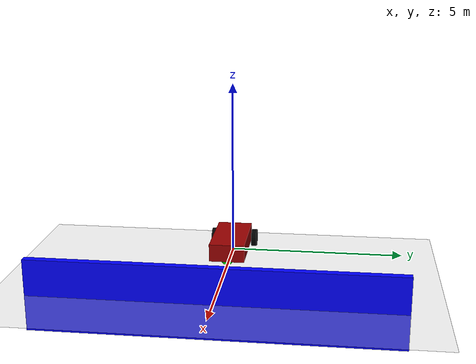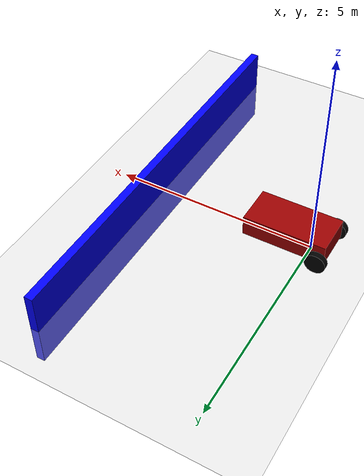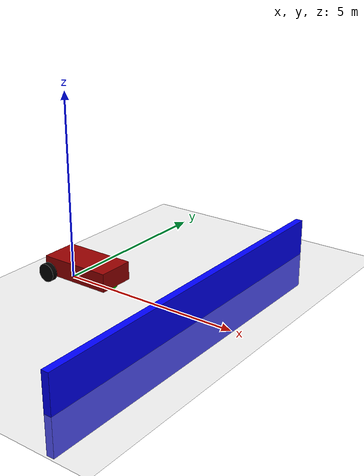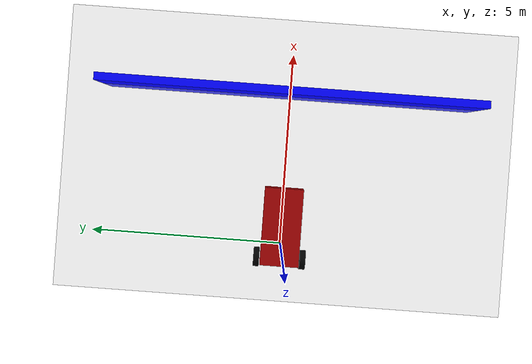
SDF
<?xml version="1.0" ?>
<sdf version="1.7">
    <world name="sensor-world">
        <physics name="1ms" type="ignored">
            <max_step_size>0.001</max_step_size>
            <real_time_factor>1.0</real_time_factor>
        </physics>
        <plugin
            filename="libignition-gazebo-physics-system.so"
            name="ignition::gazebo::systems::Physics">
        </plugin>
        <plugin
            filename="libignition-gazebo-user-commands-system.so"
            name="ignition::gazebo::systems::UserCommands">
        </plugin>
        <plugin
            filename="libignition-gazebo-scene-broadcaster-system.so"
            name="ignition::gazebo::systems::SceneBroadcaster">
        </plugin>

        <!-- Plugin for IMU sensor-->
        <plugin filename="libignition-gazebo-imu-system.so"
                name="ignition::gazebo::systems::Imu">
        </plugin>

        <!-- Plugin for Contact sensor-->
        <plugin filename="libignition-gazebo-contact-system.so"
                name="ignition::gazebo::systems::Contact">
        </plugin>

        <!-- Plugin for Lidar sensor-->
        <plugin
          filename="libignition-gazebo-sensors-system.so"
          name="ignition::gazebo::systems::Sensors">
          <render_engine>ogre2</render_engine>
        </plugin>

        <gui fullscreen="0">

            <!-- 3D scene -->
            <plugin filename="GzScene3D" name="3D View">
                <ignition-gui>
                <title>3D View</title>
                <property type="bool" key="showTitleBar">false</property>
                <property type="string" key="state">docked</property>
                </ignition-gui>

                <engine>ogre2</engine>
                <scene>scene</scene>
                <ambient_light>0.4 0.4 0.4</ambient_light>
                <background_color>0.8 0.8 0.8</background_color>
            </plugin>

            <!-- World control -->
            <plugin filename="WorldControl" name="World control">
                <ignition-gui>
                <title>World control</title>
                <property type="bool" key="showTitleBar">false</property>
                <property type="bool" key="resizable">false</property>
                <property type="double" key="height">72</property>
                <property type="double" key="width">121</property>
                <property type="double" key="z">1</property>

                <property type="string" key="state">floating</property>
                <anchors target="3D View">
                    <line own="left" target="left"/>
                    <line own="bottom" target="bottom"/>
                </anchors>
                </ignition-gui>

                <play_pause>true</play_pause>
                <step>true</step>
                <start_paused>true</start_paused>
                <service>/world/car_world/control</service>
                <stats_topic>/world/car_world/stats</stats_topic>
            </plugin>

            <!-- World statistics -->
            <plugin filename="WorldStats" name="World stats">
                <ignition-gui>
                <title>World stats</title>
                <property type="bool" key="showTitleBar">false</property>
                <property type="bool" key="resizable">false</property>
                <property type="double" key="height">110</property>
                <property type="double" key="width">290</property>
                <property type="double" key="z">1</property>

                <property type="string" key="state">floating</property>
                <anchors target="3D View">
                    <line own="right" target="right"/>
                    <line own="bottom" target="bottom"/>
                </anchors>
                </ignition-gui>

                <sim_time>true</sim_time>
                <real_time>true</real_time>
                <real_time_factor>true</real_time_factor>
                <iterations>true</iterations>
                <topic>/world/car_world/stats</topic>

            </plugin>

            <!-- Entity tree -->
            <plugin filename="EntityTree" name="Entity tree">
            </plugin>

            <!-- KeyPublisher plugin-->
            <plugin filename="KeyPublisher" name="Key Publisher"/>

        </gui>

        <light type="directional" name="sun">
            <cast_shadows>true</cast_shadows>
            <pose>0 0 10 0 0 0</pose>
            <diffuse>0.8 0.8 0.8 1</diffuse>
            <specular>0.2 0.2 0.2 1</specular>
            <attenuation>
                <range>1000</range>
                <constant>0.9</constant>
                <linear>0.01</linear>
                <quadratic>0.001</quadratic>
            </attenuation>
            <direction>-0.5 0.1 -0.9</direction>
        </light>

        <model name="ground_plane">
            <static>true</static>
            <link name="link">
                <collision name="collision">
                <geometry>
                    <plane>
                    <normal>0 0 1</normal>
                    </plane>
                </geometry>
                </collision>
                <visual name="visual">
                <geometry>
                    <plane>
                    <normal>0 0 1</normal>
                    <size>100 100</size>
                    </plane>
                </geometry>
                <material>
                    <ambient>0.8 0.8 0.8 1</ambient>
                    <diffuse>0.8 0.8 0.8 1</diffuse>
                    <specular>0.8 0.8 0.8 1</specular>
                </material>
                </visual>
            </link>
        </model>

        <!--wall-->
        <model name='wall'>
            <static>true</static>
            <pose>4 0 0 0 0 0</pose><!--pose relative to the world-->
            <link name='box'>
                <pose/>
                <visual name='visual'>
                    <geometry>
                        <box>
                            <size>0.2 10.0 2.0</size>
                        </box>
                    </geometry>
                    <!--let's add color to our link-->
                    <material>
                        <ambient>0.0 0.0 1.0 1</ambient>
                        <diffuse>0.0 0.0 1.0 1</diffuse>
                        <specular>0.0 0.0 1.0 1</specular>
                    </material>
                </visual>
                <collision name='collision'>
                    <geometry>
                        <box>
                            <size>0.5 10.0 2.0</size>
                        </box>
                    </geometry>
                </collision>
                <sensor name='sensor_contact' type='contact'>
                    <contact>
                        <collision>collision</collision>
                    </contact>
                </sensor>
                <!-- Plugin for contact sensor to detect wall-->
                <plugin filename="libignition-gazebo-touchplugin-system.so"
                        name="ignition::gazebo::systems::TouchPlugin">
                    <target>vehicle_blue</target>
                    <namespace>wall</namespace>
                    <time>0.001</time>
                    <enabled>true</enabled>
                </plugin>
            </link>
        </model>

        <!--Robot model-->
        <model name='vehicle_blue' canonical_link='chassis'>
            <pose relative_to='world'>0 0 0 0 0 0</pose>

            <frame name="lidar_frame" attached_to='chassis'>
                <pose>0.8 0 0.5 0 0 0</pose>
            </frame>

            <!--Chassis of the robot-->
            <link name='chassis'>
                <pose relative_to='__model__'>0.5 0 0.4 0 0 0</pose>

                <inertial> <!--inertial properties of the link mass, inertia matix-->
                    <mass>1.14395</mass>
                    <inertia>
                        <ixx>0.095329</ixx>
                        <ixy>0</ixy>
                        <ixz>0</ixz>
                        <iyy>0.381317</iyy>
                        <iyz>0</iyz>
                        <izz>0.476646</izz>
                    </inertia>
                </inertial>
                <visual name='visual'>
                    <geometry>
                        <box>
                            <size>2 1.0 0.5</size>
                        </box>
                    </geometry>
                    <!--let's add color to our link-->
                    <material>
                        <ambient>0.6 0.0 0.0 1</ambient>
                        <diffuse>0.6 0.0 0.0 1</diffuse>
                        <specular>0.6 0.0 0.0 1</specular>
                    </material>
                </visual>
                <collision name='collision'>
                    <geometry>
                        <box>
                            <size>2.0 1.0 0.5</size>
                        </box>
                    </geometry>
                </collision>

                <!-- IMU sensor defintion should be in chassis link-->
                <!-- Sensor definitnion of IMU-->
                <sensor name="imu_sensor" type="imu">
                    <always_on>1</always_on>
                    <update_rate>1</update_rate>
                    <visualize>true</visualize>
                    <topic>imu</topic>
                </sensor>

                <!-- Sensor definition of Lidar-->
                <sensor name='gpu_lidar' type='gpu_lidar'>"
                    <pose relative_to='lidar_frame'>0 0 0 0 0 0</pose>
                    <topic>lidar</topic>
                    <update_rate>10</update_rate>
                    <ray>
                    <scan>
                        <horizontal>
                        <samples>640</samples>
                        <resolution>1</resolution>
                        <min_angle>-1.396263</min_angle>
                        <max_angle>1.396263</max_angle>
                        </horizontal>
                        <vertical>
                        <samples>1</samples>
                        <resolution>0.01</resolution>
                        <min_angle>0</min_angle>
                        <max_angle>0</max_angle>
                        </vertical>
                    </scan>
                    <range>
                        <min>0.08</min>
                        <max>10.0</max>
                        <resolution>0.01</resolution>
                    </range>
                    </ray>
                    <always_on>1</always_on>
                    <visualize>true</visualize>
                </sensor>
            </link>

            <!--Note for all the links defined below the joint definition follows imediately-->

            <!--let's build the left wheel-->
            <link name='rear_left_wheel'>
                <pose relative_to="chassis">-0.85 0.6 -0.15 -1.5707 0 0</pose> <!--angles are in radian-->
                <inertial>
                    <mass>1</mass>
                    <inertia>
                        <ixx>0.043333</ixx>
                        <ixy>0</ixy>
                        <ixz>0</ixz>
                        <iyy>0.043333</iyy>
                        <iyz>0</iyz>
                        <izz>0.08</izz>
                    </inertia>
                </inertial>

                <visual name='visual'>
                    <geometry>
                        <cylinder>
                            <radius>0.25</radius>
                            <length>0.15</length>
                        </cylinder>
                    </geometry>
                    <material>
                        <ambient>0.0 0.0 0.0 1</ambient>
                        <diffuse>0.0 0.0 0.0 1</diffuse>
                        <specular>0.0 0.0 0.0 1</specular>
                    </material>
                </visual>
                <collision name='collision'>
                    <geometry>
                        <cylinder>
                            <radius>0.25</radius>
                            <length>0.15</length>
                        </cylinder>
                    </geometry>
                </collision>
            </link>

            <!-- Defining Rear Left Wheel Joint-->
            <joint name='rear_left_wheel_joint' type='revolute'>
                <pose relative_to='rear_left_wheel'/>
                <parent>chassis</parent>
                <child>rear_left_wheel</child>

                <axis>
                    <xyz expressed_in='__model__'>0 1 0</xyz> <!--can be defined as any frame or even arbitrary frames-->
                    <limit>
                        <lower>-1.79769e+308</lower>    <!--negative infinity-->
                        <upper>1.79769e+308</upper>     <!--positive infinity-->
                    </limit>
                </axis>
            </joint>

            <!--Rear Right wheel-->
            <link name='rear_right_wheel'>
                <pose relative_to="chassis">-0.85 -0.6 -0.15 -1.5707 0 0</pose>
                <inertial>
                    <mass>1</mass>
                    <inertia>
                        <ixx>0.043333</ixx>
                        <ixy>0</ixy>
                        <ixz>0</ixz>
                        <iyy>0.043333</iyy>
                        <iyz>0</iyz>
                        <izz>0.08</izz>
                    </inertia>
                </inertial>

                <visual name='visual'>
                    <geometry>
                        <cylinder>
                            <radius>0.25</radius>
                            <length>0.15</length>
                        </cylinder>
                    </geometry>
                    <material>
                        <ambient>0.0 0.0 0.0 1</ambient>
                        <diffuse>0.0 0.0 0.0 1</diffuse>
                        <specular>0.0 0.0 0.0 1</specular>
                    </material>
                </visual>
                <collision name='collision'>
                    <geometry>
                        <cylinder>
                            <radius>0.25</radius>
                            <length>0.15</length>
                        </cylinder>
                    </geometry>
                </collision>
            </link>

            <!--Defining Rear Right wheel Joint-->
            <joint name='rear_right_wheel_joint' type='revolute'>
                <pose relative_to='rear_right_wheel'/>
                <parent>chassis</parent>
                <child>rear_right_wheel</child>
                <axis>
                    <xyz expressed_in='__model__'>0 1 0</xyz>
                    <limit>
                        <lower>-1.79769e+308</lower>    <!--negative infinity-->
                        <upper>1.79769e+308</upper>     <!--positive infinity-->
                    </limit>
                </axis>
            </joint>

            <!--Caster Wheel-->
            <frame name="caster_frame" attached_to='chassis'>
                <pose>0.8 0 -0.2 0 0 0</pose>
            </frame>
            <!--caster wheel-->
            <link name='caster'>
                <pose relative_to='caster_frame'/>
                <inertial>
                    <mass>1</mass>
                    <inertia>
                        <ixx>0.016</ixx>
                        <ixy>0</ixy>
                        <ixz>0</ixz>
                        <iyy>0.016</iyy>
                        <iyz>0</iyz>
                        <izz>0.016</izz>
                    </inertia>
                </inertial>
                <visual name='visual'>
                    <geometry>
                        <sphere>
                            <radius>0.2</radius>
                        </sphere>
                    </geometry>
                    <material>
                        <ambient>0.0 1 0.0 1</ambient>
                        <diffuse>0.0 1 0.0 1 1</diffuse>
                        <specular>0.0 1 0.0 1</specular>
                    </material>
                </visual>
                <collision name='collision'>
                    <geometry>
                        <sphere>
                            <radius>0.2</radius>
                        </sphere>
                    </geometry>
                </collision>
            </link>

            <!--Caster Wheel Joint -->
            <joint name='caster_wheel' type='ball'>
                <parent>chassis</parent>
                <child>caster</child>
            </joint>

            <!--Differential Drive Plugin-->
            <plugin
                filename="libignition-gazebo-diff-drive-system.so"
                name="ignition::gazebo::systems::DiffDrive">

                <left_joint>rear_left_wheel_joint</left_joint>
                <right_joint>rear_right_wheel_joint</right_joint>

                <!-- kinematics -->
                <wheel_separation>1.2</wheel_separation>
                <wheel_radius>0.25</wheel_radius>
                <odom_publish_frequency>1</odom_publish_frequency>
                <topic>cmd_vel</topic>
            </plugin>

        </model>

        <!--Using Keyboard Keypress plugin to move the robot-->

        <!-- Moving Forward-->
        <plugin filename="libignition-gazebo-triggered-publisher-system.so"
                name="ignition::gazebo::systems::TriggeredPublisher">
            <input type="ignition.msgs.Int32" topic="/keyboard/keypress">
                <match field="data">16777235</match>
            </input>
            <output type="ignition.msgs.Twist" topic="/cmd_vel">
                linear: {x: 0.5}, angular: {z: 0.0}
            </output>
        </plugin>
        <!-- Moving Backward-->
        <plugin filename="libignition-gazebo-triggered-publisher-system.so"
                name="ignition::gazebo::systems::TriggeredPublisher">
            <input type="ignition.msgs.Int32" topic="/keyboard/keypress">
                <match field="data">16777237</match>
            </input>
            <output type="ignition.msgs.Twist" topic="/cmd_vel">
                linear: {x: -0.5}, angular: {z: 0.0}
            </output>
        </plugin>
        <!-- rotating right-->
        <plugin filename="libignition-gazebo-triggered-publisher-system.so"
                name="ignition::gazebo::systems::TriggeredPublisher">
            <input type="ignition.msgs.Int32" topic="/keyboard/keypress">
                <match field="data">16777236</match>
            </input>
            <output type="ignition.msgs.Twist" topic="/cmd_vel">
                linear: {x: 0.0}, angular: {z: -0.5}
            </output>
        </plugin>

        <!-- rotating left -->
        <plugin filename="libignition-gazebo-triggered-publisher-system.so"
                name="ignition::gazebo::systems::TriggeredPublisher">
            <input type="ignition.msgs.Int32" topic="/keyboard/keypress">
                <match field="data">16777234</match>
            </input>
            <output type="ignition.msgs.Twist" topic="/cmd_vel">
                linear: {x: 0.0}, angular: {z: 0.5}
            </output>
        </plugin>
    </world>
</sdf>
